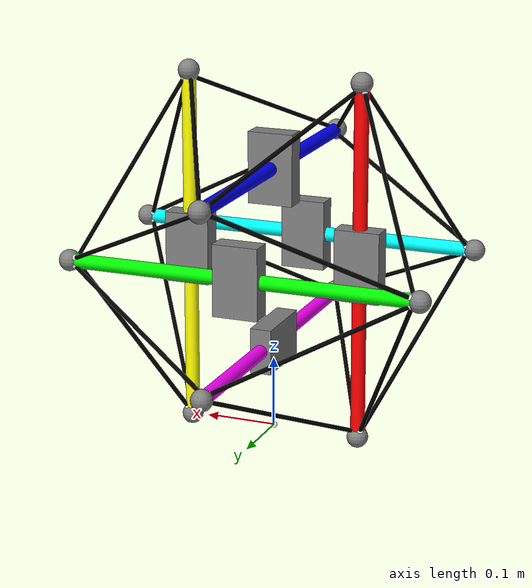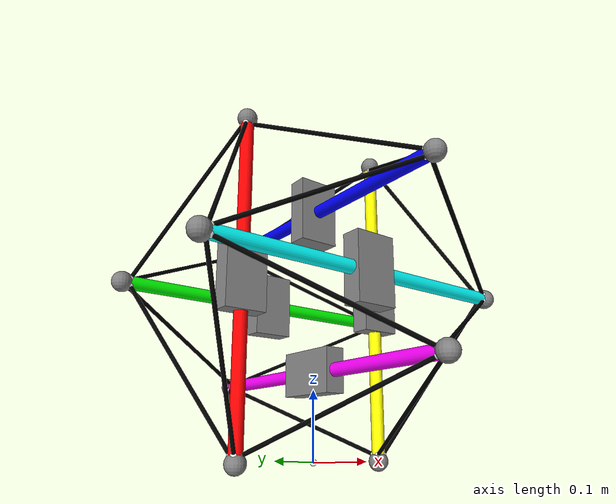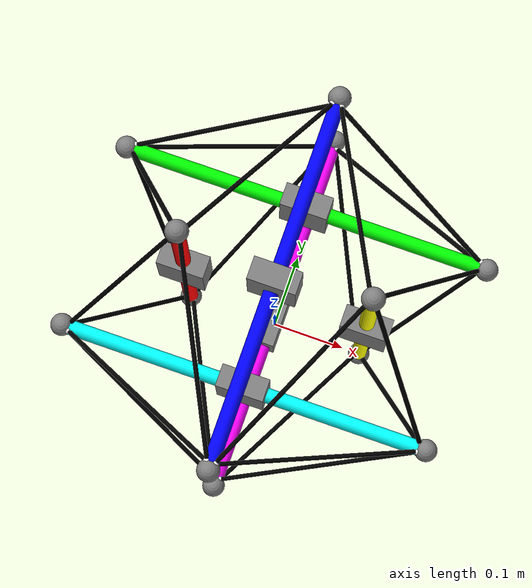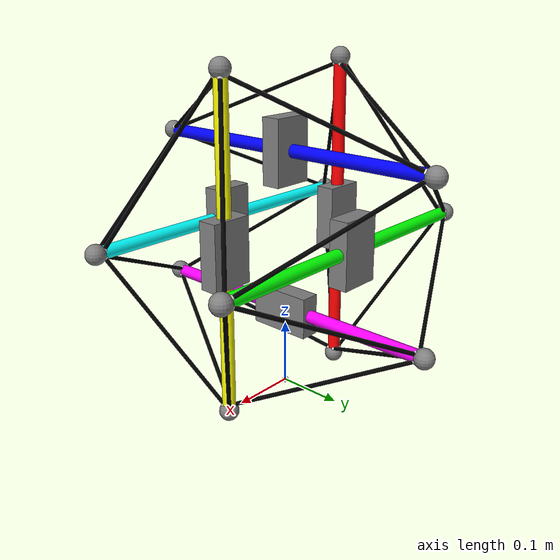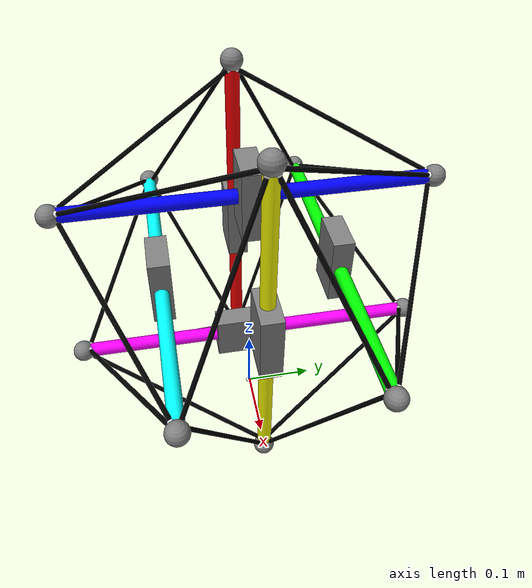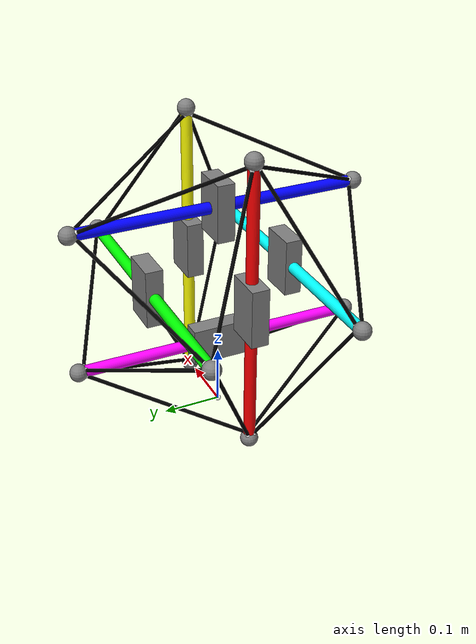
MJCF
<mujoco model="tensegrity">
  <option timestep="0.005" collision="predefined"/>
  <default>
    <site size="0.005" rgba="1 1 1 1"/>
    <default class="tendon_actuator">
      <general ctrllimited="true" ctrlrange="-18.0 0" dyntype="filter" dynprm="0.0179"/> <!-- for real2sim -->
    </default>
    <default class="tendon_spatial">
      <tendon damping="5" stiffness="200" frictionloss="0.5"/>
    </default>
    <default class="tendon_spatial_static">
      <tendon damping="5" stiffness="200" frictionloss="0.5"/>
    </default>
  </default>
  <worldbody>
    <light pos="0 1 1" dir="0 -1 -1" diffuse="1 1 1"/>

      <!-- link -->
    <body name="link1" pos="0 0 0">
      <geom name="link1" type="cylinder" size="0.01 0.25" mass="0.06" rgba="1 0 0 1" pos="-0.125 0 0.25"/>
      <body pos="-0.125 0 0.25" name="actuator1">
        <geom name="actuator1" type="box" size="0.032 0.015 0.05" mass="0.5" pos="0 0 0"/>
      </body>
      <body pos="-0.125 0 0.25" name="sphere_1t">
        <geom name="sphere_1t" type="sphere" size="0.015" mass="0.05" pos="0.0 0.0 0.25"/>
        </body>
        <body pos="-0.125 0 0.25" name="sphere_1b">
        <geom name="sphere_1b" type="sphere" size="0.015" mass="0.05" pos="0.0 0.0 -0.25"/>
        </body>
      <joint name="link1" type="free"/>
      <site name="link1_top" pos="-0.125 0 0.45"/>
      <site name="link1_top1" pos="-0.12 0.005 0.49"/>
      <site name="link1_top2" pos="-0.13 0.005 0.49"/>
      <site name="link1_top3" pos="-0.13 -0.005 0.49"/>
      <site name="link1_top4" pos="-0.12 -0.005 0.49"/>
      <site name="link1_bottom1" pos="-0.12 0.005 0.01"/>
      <site name="link1_bottom2" pos="-0.13 0.005 0.01"/>
      <site name="link1_bottom3" pos="-0.13 -0.005 0.01"/>
      <site name="link1_bottom4" pos="-0.12 -0.005 0.01"/>
      <site name="imu" pos="0.0 0 0"/>
    </body>

    <body name="link2" pos="0 0 0">
      <geom name="link2" type="cylinder" size="0.01 0.25" mass="0.06" rgba="1 1 0 1" pos="0.125 0 0.25"/>
      <body pos="0.125 0 0.25" name="actuator2">
        <geom name="actuator2" type="box" size="0.032 0.015 0.05" mass="0.5" pos="0 0 0"/>
        </body>
        <body pos="0.125 0 0.25" name="sphere_2t">
        <geom name="sphere_2t" type="sphere" size="0.015" mass="0.05" pos="0.0 0.0 0.25"/>
        </body>
        <body pos="0.125 0 0.25" name="sphere_2b">
        <geom name="sphere_2b" type="sphere" size="0.015" mass="0.05" pos="0.0 0.0 -0.25"/>
        </body>
      <joint name="link2" type="free"/>
      <site name="link2_top1" pos="0.13 0.005 0.49"/>
      <site name="link2_top2" pos="0.12 0.005 0.49"/>
      <site name="link2_top3" pos="0.12 -0.005 0.49"/>
      <site name="link2_top4" pos="0.13 -0.005 0.49"/>
      <site name="link2_bottom1" pos="0.13 0.005 0.01"/>
      <site name="link2_bottom2" pos="0.12 0.005 0.01"/>
      <site name="link2_bottom3" pos="0.12 -0.005 0.01"/>
      <site name="link2_bottom4" pos="0.13 -0.005 0.01"/>
    </body>

    <body name="link3" pos="0 0 0">
      <geom name="link3" type="cylinder" mass="0.06" rgba="0 1 0 1" fromto="-0.25 0.125 0.25 0.25 0.125 0.25" size="0.01 0.25"/>
      <body pos="0 0.125 0.25" name="actuator3">
        <geom name="actuator3" type="box" size="0.032 0.015 0.05" mass="0.5" pos="0 0 0"/>
        </body>
      <body pos="0 0.125 0.25" name="sphere_3t">
        <geom name="sphere_3t" type="sphere" size="0.015" mass="0.05" pos="0.25 0.0 0.0"/>
      </body>
      <body pos="0 0.125 0.25" name="sphere_3b">
        <geom name="sphere_3b" type="sphere" size="0.015" mass="0.05" pos="-0.25 0.0 0.0"/>
      </body>
      <joint name="link3" type="free"/>
      <site name="link3_top1" pos="0.24 0.13 0.255"/>
      <site name="link3_top2" pos="0.24 0.12 0.255"/>
      <site name="link3_top3" pos="0.24 0.12 0.245"/>
      <site name="link3_top4" pos="0.24 0.13 0.245"/>
      <site name="link3_bottom1" pos="-0.24 0.13 0.255"/>
      <site name="link3_bottom2" pos="-0.24 0.12 0.255"/>
      <site name="link3_bottom3" pos="-0.24 0.12 0.245"/>
      <site name="link3_bottom4" pos="-0.24 0.13 0.245"/>
    </body>

    <body name="link4" pos="0 0 0">
      <geom name="link4" type="cylinder" size="0.01 0.25" mass="0.06" rgba="0 1 1 1" fromto="-0.25 -0.125 0.25 0.25 -0.125 0.25"/>
      <body pos="0 -0.125 0.25" name="actuator4">
        <geom name="actuator4" type="box" size="0.032 0.015 0.05" mass="0.5" pos="0 0 0"/>
      </body>
      <body pos="0 -0.125 0.25" name="sphere_4t">
        <geom name="sphere_4t" type="sphere" size="0.015" mass="0.05" pos="0.25 0.0 0.0"/>
      </body>
      <body pos="0 -0.125 0.25" name="sphere_4b">
        <geom name="sphere_4b" type="sphere" size="0.015" mass="0.05" pos="-0.25 0.0 0.0"/>
      </body>
      <joint name="link4" type="free"/>
      <site name="link4_top1" pos="0.24 -0.12 0.255"/>
      <site name="link4_top2" pos="0.24 -0.13 0.255"/>
      <site name="link4_top3" pos="0.24 -0.13 0.245"/>
      <site name="link4_top4" pos="0.24 -0.12 0.245"/>
      <site name="link4_bottom1" pos="-0.24 -0.12 0.255"/>
      <site name="link4_bottom2" pos="-0.24 -0.13 0.255"/>
      <site name="link4_bottom3" pos="-0.24 -0.13 0.245"/>
      <site name="link4_bottom4" pos="-0.24 -0.12 0.245"/>
    </body>

    <body name="link5" pos="0 0 0">
      <geom name="link5" type="cylinder" size="0.01 0.25" mass="0.06" rgba="0 0 1 1" fromto="0 -0.25 0.375 0 0.25 0.375"/>
      <body pos="0 0 0.375" name="actuator5">
        <geom name="actuator5" type="box" size="0.032 0.015 0.05" mass="0.5" pos="0 0 0"/>
      </body>
      <body pos="0 0 0.375" name="sphere_5t">
        <geom name="sphere_5t" type="sphere" size="0.015" mass="0.05" pos="0.0 0.25 0.0"/>
      </body>
      <body pos="0 0 0.375" name="sphere_5b">
        <geom name="sphere_5b" type="sphere" size="0.015" mass="0.05" pos="0.0 -0.25 0.0"/>
      </body>
      <joint name="link5" type="free"/>
      <site name="link5_top1" pos="0.005 0.24 0.38"/>
      <site name="link5_top2" pos="0.005 0.24 0.37"/>
      <site name="link5_top3" pos="-0.005 0.24 0.37"/>
      <site name="link5_top4" pos="-0.005 0.24 0.38"/>
      <site name="link5_bottom1" pos="0.005 -0.24 0.38"/>
      <site name="link5_bottom2" pos="0.005 -0.24 0.37"/>
      <site name="link5_bottom3" pos="-0.005 -0.24 0.37"/>
      <site name="link5_bottom4" pos="-0.005 -0.24 0.38"/>
    </body>

    <body name="link6" pos="0 0 0">
      <geom name="link6" type="cylinder" size="0.01 0.25" mass="0.1" rgba="1 0 1 1" fromto="0 -0.25 0.125 0 0.25 0.125"/>
      <body pos="0 0 0.125" name="actuator6">
        <geom name="actuator6" type="box" size="0.015 0.05 0.032" mass="0.5" pos="0 0 0"/>
      </body>
      <body pos="0 0 0.125" name="sphere_6t">
      <geom name="sphere_6t" type="sphere" size="0.015" mass="0.05" pos="0.0 0.25 0.0"/>
        </body>
        <body pos="0 0 0.125" name="sphere_6b">
      <geom name="sphere_6b" type="sphere" size="0.015" mass="0.05" pos="0.0 -0.25 0.0"/>
        </body>
      <joint name="link6" type="free"/>
      <site name="link6_top" pos="0.0 0.24 0.125"/>
      <site name="link6_top1" pos="0.005 0.24 0.13"/>
      <site name="link6_top2" pos="0.005 0.24 0.12"/>
      <site name="link6_top3" pos="-0.005 0.24 0.12"/>
      <site name="link6_top4" pos="-0.005 0.24 0.13"/>
      <site name="link6_bottom" pos="0.0 -0.24 0.125"/>
      <site name="link6_bottom1" pos="0.005 -0.24 0.13"/>
      <site name="link6_bottom2" pos="0.005 -0.24 0.12"/>
      <site name="link6_bottom3" pos="-0.005 -0.24 0.12"/>
      <site name="link6_bottom4" pos="-0.005 -0.24 0.13"/>
    </body>

  </worldbody>

  <tendon>
    <!-- link1 -->
    <spatial name="link1t_3b" class="tendon_spatial" rgba="0 0 0 1">
      <site site="link1_top2"/>
      <site site="link3_bottom2"/>
    </spatial>
    <spatial name="link1t_4b" class="tendon_spatial" rgba="0 0 0 1">
      <site site="link1_top3"/>
      <site site="link4_bottom1"/>
    </spatial>
    <spatial name="link1b_3b" class="tendon_spatial" rgba="0 0 0 1">
      <site site="link1_bottom2"/>
      <site site="link3_bottom3"/>
    </spatial>
    <spatial name="link1b_4b" class="tendon_spatial" rgba="0 0 0 1">
      <site site="link1_bottom3"/>
      <site site="link4_bottom4"/>
    </spatial>
    <spatial name="link1b_6t" class="tendon_spatial" rgba="0 0 0 1">
      <site site="link1_bottom1"/>
      <site site="link6_top3"/>
    </spatial>
    <spatial name="link1b_6b" class="tendon_spatial" rgba="0 0 0 1">
      <site site="link1_bottom4"/>
      <site site="link6_bottom3"/>
    </spatial>
    <spatial name="link1t_5t" class="tendon_spatial" rgba="0 0 0 1">
      <site site="link1_top1"/>
      <site site="link5_top4"/>
    </spatial>
    <spatial name="link1t_5b" class="tendon_spatial" rgba="0 0 0 1">
      <site site="link1_top4"/>
      <site site="link5_bottom4"/>
    </spatial>

    <!-- link2 -->
    <spatial name="link2t_3t" class="tendon_spatial" rgba="0 0 0 1">
      <site site="link2_top1"/>
      <site site="link3_top2"/>
    </spatial>
    <spatial name="link2t_4t" class="tendon_spatial" rgba="0 0 0 1">
      <site site="link2_top4"/>
      <site site="link4_top1"/>
    </spatial>
    <spatial name="link2b_3t" class="tendon_spatial" rgba="0 0 0 1">
      <site site="link2_bottom1"/>
      <site site="link3_top3"/>
    </spatial>
    <spatial name="link2b_4t" class="tendon_spatial" rgba="0 0 0 1">
      <site site="link2_bottom4"/>
      <site site="link4_top4"/>
    </spatial>
    <spatial name="link2b_6t" class="tendon_spatial" rgba="0 0 0 1">
      <site site="link2_bottom2"/>
      <site site="link6_top2"/>
    </spatial>
    <spatial name="link2b_6b" class="tendon_spatial" rgba="0 0 0 1">
      <site site="link2_bottom3"/>
      <site site="link6_bottom2"/>
    </spatial>
    <spatial name="link2t_5t" class="tendon_spatial" rgba="0 0 0 1">
      <site site="link2_top2"/>
      <site site="link5_top1"/>
    </spatial>
    <spatial name="link2t_5b" class="tendon_spatial" rgba="0 0 0 1">
      <site site="link2_top3"/>
      <site site="link5_bottom1"/>
    </spatial>

    <!-- link3 -->
    <spatial name="link3t_5t" class="tendon_spatial" rgba="0 0 0 1">
      <site site="link3_top1"/>
      <site site="link5_top2"/>
    </spatial>
    <spatial name="link3b_5t" class="tendon_spatial" rgba="0 0 0 1">
      <site site="link3_bottom1"/>
      <site site="link5_top3"/>
    </spatial>
    <spatial name="link3t_6t" class="tendon_spatial" rgba="0 0 0 1">
      <site site="link3_top4"/>
      <site site="link6_top1"/>
    </spatial>
    <spatial name="link3b_6t" class="tendon_spatial" rgba="0 0 0 1">
      <site site="link3_bottom4"/>
      <site site="link6_top4"/>
    </spatial>

    <!-- link4 -->
    <spatial name="link4t_5b" class="tendon_spatial" rgba="0 0 0 1">
      <site site="link4_top2"/>
      <site site="link5_bottom2"/>
    </spatial>
    <spatial name="link4b_5b" class="tendon_spatial" rgba="0 0 0 1">
      <site site="link4_bottom2"/>
      <site site="link5_bottom3"/>
    </spatial>
    <spatial name="link4t_6b" class="tendon_spatial" rgba="0 0 0 1">
      <site site="link4_top3"/>
      <site site="link6_bottom1"/>
    </spatial>
    <spatial name="link4b_6b" class="tendon_spatial" rgba="0 0 0 1">
      <site site="link4_bottom3"/>
      <site site="link6_bottom4"/>
    </spatial>
  </tendon>

  <actuator>
    <!-- tention-controlled actuators-->
    <general name="link1t_3b" tendon="link1t_3b"  class="tendon_actuator"/>
    <general name="link1t_4b" tendon="link1t_4b"  class="tendon_actuator"/>
    <general name="link1b_3b" tendon="link1b_3b"  class="tendon_actuator"/>
    <general name="link1b_4b" tendon="link1b_4b"  class="tendon_actuator"/>
    <general name="link1b_6t" tendon="link1b_6b"  class="tendon_actuator"/>
    <general name="link1b_6b" tendon="link1b_6b"  class="tendon_actuator"/>
    <general name="link1t_5b" tendon="link1t_5b"  class="tendon_actuator"/>
    <general name="link1b_5t" tendon="link1t_5t"  class="tendon_actuator"/>
    <general name="link2t_4t" tendon="link2t_4t"  class="tendon_actuator"/>
    <general name="link2t_3t" tendon="link2t_3t"  class="tendon_actuator"/>
    <general name="link2b_3t" tendon="link2b_3t"  class="tendon_actuator"/>
    <general name="link2b_4t" tendon="link2b_4t"  class="tendon_actuator"/>
    <general name="link2b_6t" tendon="link2b_6t"  class="tendon_actuator"/>
    <general name="link2t_5t" tendon="link2t_5t"  class="tendon_actuator"/>
    <general name="link2b_6b" tendon="link2b_6b"  class="tendon_actuator"/>
    <general name="link2t_5b" tendon="link2t_5b"  class="tendon_actuator"/>
    <general name="link3t_5t" tendon="link3t_5t"  class="tendon_actuator"/>
    <general name="link3b_5t" tendon="link3b_5t"  class="tendon_actuator"/>
    <general name="link3t_6t" tendon="link3t_6t"  class="tendon_actuator"/>
    <general name="link3b_6t" tendon="link3b_6t"  class="tendon_actuator"/>
    <general name="link4t_5b" tendon="link4t_5b"  class="tendon_actuator"/>
    <general name="link4b_5b" tendon="link4b_5b"  class="tendon_actuator"/>
    <general name="link4t_6b" tendon="link4b_6b"  class="tendon_actuator"/>
    <general name="link4b_6b" tendon="link4b_6b"  class="tendon_actuator"/>

  </actuator>

  <sensor>
  </sensor>

</mujoco>
